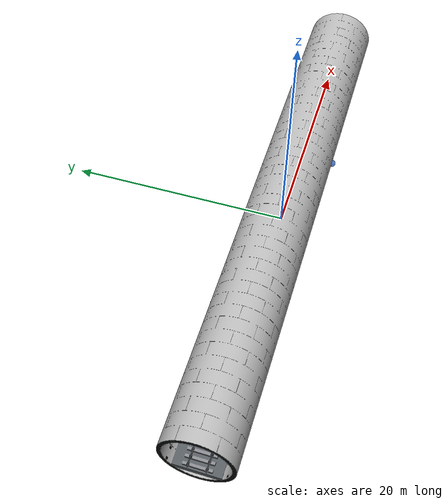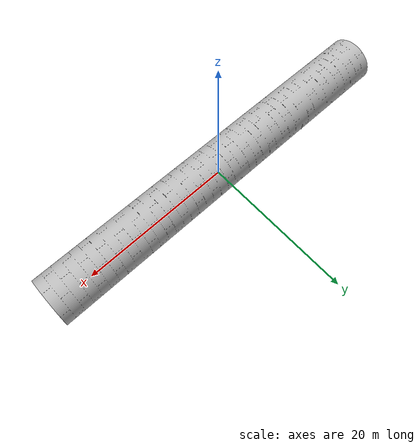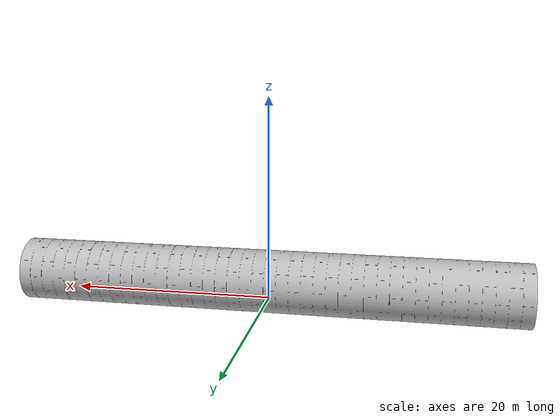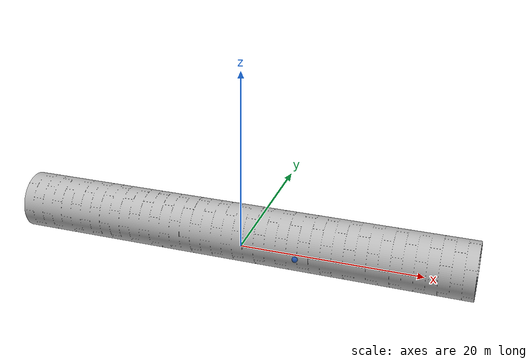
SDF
<sdf version="1.7">
 <world name="subway_track_tunnel">
  <physics type="ode">
   <max_step_size>0.001</max_step_size>
   <real_time_factor>1</real_time_factor>
   <real_time_update_rate>1000</real_time_update_rate>
  </physics>
  <scene>
   <ambient>0.60 0.61 0.63 1</ambient>
   <background>0.025 0.027 0.032 1</background>
   <shadows>false</shadows>
   <grid>false</grid>
   <origin_visual>false</origin_visual>
  </scene>
  <light name="soft_fill" type="directional">
   <cast_shadows>false</cast_shadows>
   <pose>0 0 8 0 0 0</pose>
   <diffuse>0.18 0.18 0.18 1</diffuse>
   <specular>0.08 0.08 0.08 1</specular>
   <direction>-0.35 0 -1</direction>
  </light>
  <light name="tunnel_fill_m18" type="point">
   <cast_shadows>false</cast_shadows>
   <pose>-18 0 3.45 0 0 0</pose>
   <diffuse>0.16 0.17 0.18 1</diffuse>
   <specular>0.02 0.02 0.02 1</specular>
   <attenuation>
    <range>14</range>
    <constant>0.8</constant>
    <linear>0.08</linear>
    <quadratic>0.02</quadratic>
   </attenuation>
  </light>
  <light name="tunnel_fill_m9" type="point">
   <cast_shadows>false</cast_shadows>
   <pose>-9 0 3.45 0 0 0</pose>
   <diffuse>0.16 0.17 0.18 1</diffuse>
   <specular>0.02 0.02 0.02 1</specular>
   <attenuation>
    <range>14</range>
    <constant>0.8</constant>
    <linear>0.08</linear>
    <quadratic>0.02</quadratic>
   </attenuation>
  </light>
  <light name="tunnel_fill_0" type="point">
   <cast_shadows>false</cast_shadows>
   <pose>0 0 3.45 0 0 0</pose>
   <diffuse>0.16 0.17 0.18 1</diffuse>
   <specular>0.02 0.02 0.02 1</specular>
   <attenuation>
    <range>14</range>
    <constant>0.8</constant>
    <linear>0.08</linear>
    <quadratic>0.02</quadratic>
   </attenuation>
  </light>
  <light name="tunnel_fill_9" type="point">
   <cast_shadows>false</cast_shadows>
   <pose>9 0 3.45 0 0 0</pose>
   <diffuse>0.16 0.17 0.18 1</diffuse>
   <specular>0.02 0.02 0.02 1</specular>
   <attenuation>
    <range>14</range>
    <constant>0.8</constant>
    <linear>0.08</linear>
    <quadratic>0.02</quadratic>
   </attenuation>
  </light>
  <light name="tunnel_fill_18" type="point">
   <cast_shadows>false</cast_shadows>
   <pose>18 0 3.45 0 0 0</pose>
   <diffuse>0.16 0.17 0.18 1</diffuse>
   <specular>0.02 0.02 0.02 1</specular>
   <attenuation>
    <range>14</range>
    <constant>0.8</constant>
    <linear>0.08</linear>
    <quadratic>0.02</quadratic>
   </attenuation>
  </light>
  <model name="smooth_robot_drive_surface">
   <static>true</static>
   <link name="drive_surface_link">
    <collision name="drive_surface_collision">
     <pose>0 0 0.315 0 0 0</pose>
     <geometry><box><size>50 1.80 0.05</size></box></geometry>
     <surface>
      <friction><ode><mu>1.0</mu><mu2>1.0</mu2></ode></friction>
      <contact><ode><kp>1e+06</kp><kd>10</kd><max_vel>0.1</max_vel><min_depth>0.001</min_depth></ode></contact>
     </surface>
    </collision>
    <collision name="left_hidden_guide">
     <pose>0 0.92 0.45 0 0 0</pose>
     <geometry><box><size>50 0.05 0.25</size></box></geometry>
    </collision>
    <collision name="right_hidden_guide">
     <pose>0 -0.92 0.45 0 0 0</pose>
     <geometry><box><size>50 0.05 0.25</size></box></geometry>
    </collision>
   </link>
  </model>
  <include>
   <uri>model://subway_tunnel</uri>
   <name>subway_tunnel</name>
   <pose>0 0 1.75 0 0 0</pose>
   <static>true</static>
  </include>
  <model name="defect_markers">
   <static>true</static>
   <link name="crack_marker">
    <pose>-12 3.105 1.65 0 0 0</pose>
    <visual name="visual">
     <geometry><box><size>0.06 0.02 1.1</size></box></geometry>
     <material><ambient>0.02 0.02 0.02 1</ambient><diffuse>0.02 0.02 0.02 1</diffuse></material>
    </visual>
   </link>
   <link name="leak_marker">
    <pose>7 -3.105 1.35 0 0 0</pose>
    <visual name="visual">
     <geometry><sphere><radius>0.32</radius></sphere></geometry>
     <material>
      <ambient>0.02 0.2 0.55 0.72</ambient>
      <diffuse>0.04 0.32 0.8 0.72</diffuse>
      <transparency>0.35</transparency>
     </material>
    </visual>
   </link>
   <link name="loose_bracket_marker">
    <pose>23 2.84 2.72 0 0 0</pose>
    <visual name="visual">
     <geometry><box><size>0.55 0.12 0.12</size></box></geometry>
     <material><ambient>0.8 0.2 0.05 1</ambient><diffuse>0.95 0.28 0.08 1</diffuse></material>
    </visual>
   </link>
  </model>
 </world>
</sdf>

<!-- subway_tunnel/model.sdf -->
<sdf version="1.7">
  <model name="subway_tunnel">
    <static>true</static>
    <link name="tunnel">
      <visual name="visual">
        <geometry>
          <mesh>
            <uri>model://subway_tunnel/meshes/tunnel.dae</uri>
            <scale>1 1 1</scale>
          </mesh>
        </geometry>
        <cast_shadows>true</cast_shadows>
      </visual>

      <collision name="collision">
        <geometry>
          <mesh>
            <uri>model://subway_tunnel/meshes/tunnel_collision.stl</uri>
            <scale>1 1 1</scale>
          </mesh>
        </geometry>
        <surface>
          <friction>
            <ode>
              <mu>1</mu>
              <mu2>1</mu2>
            </ode>
          </friction>
          <contact>
            <ode>
              <kp>1e+13</kp>
              <kd>1</kd>
              <max_vel>0.01</max_vel>
              <min_depth>0</min_depth>
            </ode>
          </contact>
        </surface>
      </collision>
    </link>
  </model>
</sdf>
